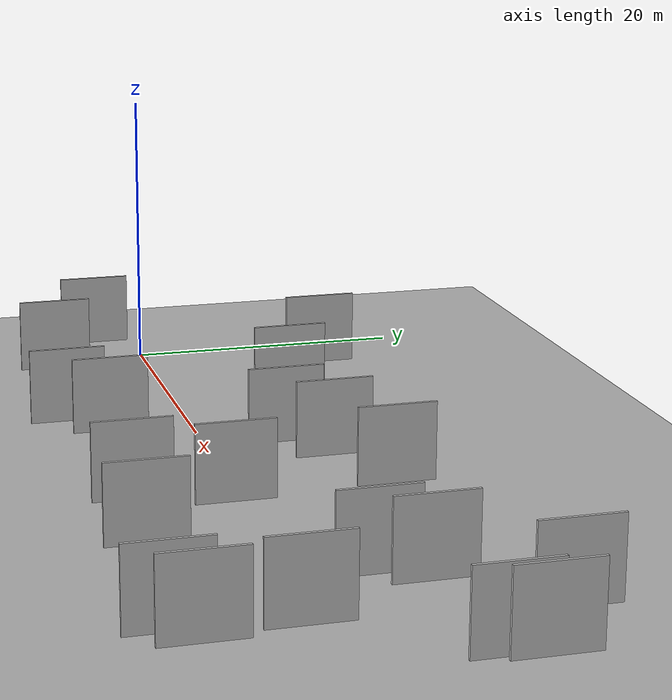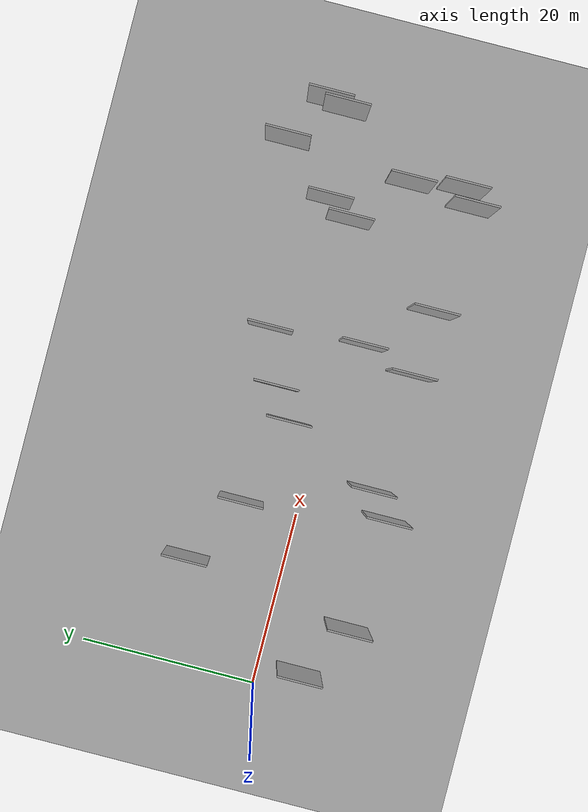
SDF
<?xml version="1.0" encoding="utf-8"?>

<sdf version="1.6">

   <world name="default">

      <gui fullscreen="0">

         <camera name="user_camera">

            <pose>-15 0 4.57585 0 0 0</pose>

            <view_controller>orbit</view_controller>

         </camera>

      </gui>

      <scene>

         <sky>

           <clouds>

             <speed>12</speed>

           </clouds>

         </sky>

         <ambient>0.4 0.4 0.4 1</ambient>

         <background>0.7 0.7 0.7 1</background>

         <shadows>1</shadows>

      </scene>

      <gravity>0 0 -9.8066</gravity>

      <magnetic_field>6e-06 2.3e-05 -4.2e-05</magnetic_field>

      <physics default="0" name="default_physics" type="ode">

         <ode>

            <solver>

               <type>quick</type>

               <iters>10</iters>

               <sor>1.0</sor>

               <use_dynamic_moi_rescaling>0</use_dynamic_moi_rescaling>

            </solver>

            <constraints>

               <cfm>0</cfm>

               <erp>0.2</erp>

               <contact_max_correcting_vel>100</contact_max_correcting_vel>

               <contact_surface_layer>0.001</contact_surface_layer>

            </constraints>

         </ode>

         <max_step_size>0.004</max_step_size>

         <real_time_factor>1</real_time_factor>

         <real_time_update_rate>250</real_time_update_rate>

      </physics>

      <light name="sun" type="directional">

         <cast_shadows>1</cast_shadows>

         <pose>0 0 10 0 0 0</pose>

         <diffuse>0.8 0.8 0.8 1</diffuse>

         <specular>0.2 0.2 0.2 1</specular>

         <attenuation>

            <range>1000</range>

            <constant>0.9</constant>

            <linear>0.01</linear>

            <quadratic>0.001</quadratic>

         </attenuation>

         <direction>-0.5 0.1 -0.9</direction>

      </light>

      <include>

         <name>ground_plane_1</name>

         <uri>model://HANNAS_ground_plane</uri>

         <pose>0 0 0  0 0 0</pose>

      </include>

      <include>

         <name>ground_plane_2</name>

         <uri>model://HANNAS_ground_plane</uri>

         <pose>100 0 0  0 0 0</pose>

      </include>

      <model name="HANNAS_wall_1">

         <static>1</static>

         <pose frame="">13.2451 10.8128 2.5 0.000000 0.000000 1.570796</pose>

         <link name="link">

            <pose frame="">0 0 2.50 0 0 0</pose>

            <collision name="collision">

               <geometry>

                  <box>

                     <size>5.00 0.2 5.00</size>

                  </box>

               </geometry>

               <max_contacts>10</max_contacts>

               <surface>

                  <contact>

                     <ode/>

                  </contact>

                  <bounce/>

                  <friction>

                     <torsional>

                        <ode/>

                     </torsional>

                     <ode/>

                  </friction>

               </surface>

            </collision>

            <visual name="visual">

               <cast_shadows>0</cast_shadows>

               <geometry>

                  <box>

                     <size>5.00 0.2 5.00</size>

                  </box>

               </geometry>

               <material>

                  <script>

                     <uri>model://HANNAS_wall/materials/scripts</uri>

                     <uri>model://HANNAS_wall/materials/textures</uri>

                     <name>vrc/HANNAS_wall</name>

                  </script>

               </material>

            </visual>

            <self_collide>0</self_collide>

            <enable_wind>0</enable_wind>

            <kinematic>0</kinematic>

         </link>

      </model>

      <model name="HANNAS_wall_2">

         <static>1</static>

         <pose frame="">39.5926 8.1838 2.5 0.000000 0.000000 1.570796</pose>

         <link name="link">

            <pose frame="">0 0 2.50 0 0 0</pose>

            <collision name="collision">

               <geometry>

                  <box>

                     <size>5.00 0.2 5.00</size>

                  </box>

               </geometry>

               <max_contacts>10</max_contacts>

               <surface>

                  <contact>

                     <ode/>

                  </contact>

                  <bounce/>

                  <friction>

                     <torsional>

                        <ode/>

                     </torsional>

                     <ode/>

                  </friction>

               </surface>

            </collision>

            <visual name="visual">

               <cast_shadows>0</cast_shadows>

               <geometry>

                  <box>

                     <size>5.00 0.2 5.00</size>

                  </box>

               </geometry>

               <material>

                  <script>

                     <uri>model://HANNAS_wall/materials/scripts</uri>

                     <uri>model://HANNAS_wall/materials/textures</uri>

                     <name>vrc/HANNAS_wall</name>

                  </script>

               </material>

            </visual>

            <self_collide>0</self_collide>

            <enable_wind>0</enable_wind>

            <kinematic>0</kinematic>

         </link>

      </model>

      <model name="HANNAS_wall_3">

         <static>1</static>

         <pose frame="">58.6448 -2.6094 2.5 0.000000 0.000000 1.570796</pose>

         <link name="link">

            <pose frame="">0 0 2.50 0 0 0</pose>

            <collision name="collision">

               <geometry>

                  <box>

                     <size>5.00 0.2 5.00</size>

                  </box>

               </geometry>

               <max_contacts>10</max_contacts>

               <surface>

                  <contact>

                     <ode/>

                  </contact>

                  <bounce/>

                  <friction>

                     <torsional>

                        <ode/>

                     </torsional>

                     <ode/>

                  </friction>

               </surface>

            </collision>

            <visual name="visual">

               <cast_shadows>0</cast_shadows>

               <geometry>

                  <box>

                     <size>5.00 0.2 5.00</size>

                  </box>

               </geometry>

               <material>

                  <script>

                     <uri>model://HANNAS_wall/materials/scripts</uri>

                     <uri>model://HANNAS_wall/materials/textures</uri>

                     <name>vrc/HANNAS_wall</name>

                  </script>

               </material>

            </visual>

            <self_collide>0</self_collide>

            <enable_wind>0</enable_wind>

            <kinematic>0</kinematic>

         </link>

      </model>

      <model name="HANNAS_wall_4">

         <static>1</static>

         <pose frame="">20.6248 6.5667 2.5 0.000000 0.000000 1.570796</pose>

         <link name="link">

            <pose frame="">0 0 2.50 0 0 0</pose>

            <collision name="collision">

               <geometry>

                  <box>

                     <size>5.00 0.2 5.00</size>

                  </box>

               </geometry>

               <max_contacts>10</max_contacts>

               <surface>

                  <contact>

                     <ode/>

                  </contact>

                  <bounce/>

                  <friction>

                     <torsional>

                        <ode/>

                     </torsional>

                     <ode/>

                  </friction>

               </surface>

            </collision>

            <visual name="visual">

               <cast_shadows>0</cast_shadows>

               <geometry>

                  <box>

                     <size>5.00 0.2 5.00</size>

                  </box>

               </geometry>

               <material>

                  <script>

                     <uri>model://HANNAS_wall/materials/scripts</uri>

                     <uri>model://HANNAS_wall/materials/textures</uri>

                     <name>vrc/HANNAS_wall</name>

                  </script>

               </material>

            </visual>

            <self_collide>0</self_collide>

            <enable_wind>0</enable_wind>

            <kinematic>0</kinematic>

         </link>

      </model>

      <model name="HANNAS_wall_5">

         <static>1</static>

         <pose frame="">53.0732 2.7881 2.5 0.000000 0.000000 1.570796</pose>

         <link name="link">

            <pose frame="">0 0 2.50 0 0 0</pose>

            <collision name="collision">

               <geometry>

                  <box>

                     <size>5.00 0.2 5.00</size>

                  </box>

               </geometry>

               <max_contacts>10</max_contacts>

               <surface>

                  <contact>

                     <ode/>

                  </contact>

                  <bounce/>

                  <friction>

                     <torsional>

                        <ode/>

                     </torsional>

                     <ode/>

                  </friction>

               </surface>

            </collision>

            <visual name="visual">

               <cast_shadows>0</cast_shadows>

               <geometry>

                  <box>

                     <size>5.00 0.2 5.00</size>

                  </box>

               </geometry>

               <material>

                  <script>

                     <uri>model://HANNAS_wall/materials/scripts</uri>

                     <uri>model://HANNAS_wall/materials/textures</uri>

                     <name>vrc/HANNAS_wall</name>

                  </script>

               </material>

            </visual>

            <self_collide>0</self_collide>

            <enable_wind>0</enable_wind>

            <kinematic>0</kinematic>

         </link>

      </model>

      <model name="HANNAS_wall_6">

         <static>1</static>

         <pose frame="">30.2389 3.7222 2.5 0.000000 0.000000 1.570796</pose>

         <link name="link">

            <pose frame="">0 0 2.50 0 0 0</pose>

            <collision name="collision">

               <geometry>

                  <box>

                     <size>5.00 0.2 5.00</size>

                  </box>

               </geometry>

               <max_contacts>10</max_contacts>

               <surface>

                  <contact>

                     <ode/>

                  </contact>

                  <bounce/>

                  <friction>

                     <torsional>

                        <ode/>

                     </torsional>

                     <ode/>

                  </friction>

               </surface>

            </collision>

            <visual name="visual">

               <cast_shadows>0</cast_shadows>

               <geometry>

                  <box>

                     <size>5.00 0.2 5.00</size>

                  </box>

               </geometry>

               <material>

                  <script>

                     <uri>model://HANNAS_wall/materials/scripts</uri>

                     <uri>model://HANNAS_wall/materials/textures</uri>

                     <name>vrc/HANNAS_wall</name>

                  </script>

               </material>

            </visual>

            <self_collide>0</self_collide>

            <enable_wind>0</enable_wind>

            <kinematic>0</kinematic>

         </link>

      </model>

      <model name="HANNAS_wall_7">

         <static>1</static>

         <pose frame="">33.6162 5.9820 2.5 0.000000 0.000000 1.570796</pose>

         <link name="link">

            <pose frame="">0 0 2.50 0 0 0</pose>

            <collision name="collision">

               <geometry>

                  <box>

                     <size>5.00 0.2 5.00</size>

                  </box>

               </geometry>

               <max_contacts>10</max_contacts>

               <surface>

                  <contact>

                     <ode/>

                  </contact>

                  <bounce/>

                  <friction>

                     <torsional>

                        <ode/>

                     </torsional>

                     <ode/>

                  </friction>

               </surface>

            </collision>

            <visual name="visual">

               <cast_shadows>0</cast_shadows>

               <geometry>

                  <box>

                     <size>5.00 0.2 5.00</size>

                  </box>

               </geometry>

               <material>

                  <script>

                     <uri>model://HANNAS_wall/materials/scripts</uri>

                     <uri>model://HANNAS_wall/materials/textures</uri>

                     <name>vrc/HANNAS_wall</name>

                  </script>

               </material>

            </visual>

            <self_collide>0</self_collide>

            <enable_wind>0</enable_wind>

            <kinematic>0</kinematic>

         </link>

      </model>

      <model name="HANNAS_wall_8">

         <static>1</static>

         <pose frame="">9.9289 -8.1505 2.5 0.000000 0.000000 1.570796</pose>

         <link name="link">

            <pose frame="">0 0 2.50 0 0 0</pose>

            <collision name="collision">

               <geometry>

                  <box>

                     <size>5.00 0.2 5.00</size>

                  </box>

               </geometry>

               <max_contacts>10</max_contacts>

               <surface>

                  <contact>

                     <ode/>

                  </contact>

                  <bounce/>

                  <friction>

                     <torsional>

                        <ode/>

                     </torsional>

                     <ode/>

                  </friction>

               </surface>

            </collision>

            <visual name="visual">

               <cast_shadows>0</cast_shadows>

               <geometry>

                  <box>

                     <size>5.00 0.2 5.00</size>

                  </box>

               </geometry>

               <material>

                  <script>

                     <uri>model://HANNAS_wall/materials/scripts</uri>

                     <uri>model://HANNAS_wall/materials/textures</uri>

                     <name>vrc/HANNAS_wall</name>

                  </script>

               </material>

            </visual>

            <self_collide>0</self_collide>

            <enable_wind>0</enable_wind>

            <kinematic>0</kinematic>

         </link>

      </model>

      <model name="HANNAS_wall_9">

         <static>1</static>

         <pose frame="">40.2540 -2.0365 2.5 0.000000 0.000000 1.570796</pose>

         <link name="link">

            <pose frame="">0 0 2.50 0 0 0</pose>

            <collision name="collision">

               <geometry>

                  <box>

                     <size>5.00 0.2 5.00</size>

                  </box>

               </geometry>

               <max_contacts>10</max_contacts>

               <surface>

                  <contact>

                     <ode/>

                  </contact>

                  <bounce/>

                  <friction>

                     <torsional>

                        <ode/>

                     </torsional>

                     <ode/>

                  </friction>

               </surface>

            </collision>

            <visual name="visual">

               <cast_shadows>0</cast_shadows>

               <geometry>

                  <box>

                     <size>5.00 0.2 5.00</size>

                  </box>

               </geometry>

               <material>

                  <script>

                     <uri>model://HANNAS_wall/materials/scripts</uri>

                     <uri>model://HANNAS_wall/materials/textures</uri>

                     <name>vrc/HANNAS_wall</name>

                  </script>

               </material>

            </visual>

            <self_collide>0</self_collide>

            <enable_wind>0</enable_wind>

            <kinematic>0</kinematic>

         </link>

      </model>

      <model name="HANNAS_wall_10">

         <static>1</static>

         <pose frame="">25.2299 -6.8464 2.5 0.000000 0.000000 1.570796</pose>

         <link name="link">

            <pose frame="">0 0 2.50 0 0 0</pose>

            <collision name="collision">

               <geometry>

                  <box>

                     <size>5.00 0.2 5.00</size>

                  </box>

               </geometry>

               <max_contacts>10</max_contacts>

               <surface>

                  <contact>

                     <ode/>

                  </contact>

                  <bounce/>

                  <friction>

                     <torsional>

                        <ode/>

                     </torsional>

                     <ode/>

                  </friction>

               </surface>

            </collision>

            <visual name="visual">

               <cast_shadows>0</cast_shadows>

               <geometry>

                  <box>

                     <size>5.00 0.2 5.00</size>

                  </box>

               </geometry>

               <material>

                  <script>

                     <uri>model://HANNAS_wall/materials/scripts</uri>

                     <uri>model://HANNAS_wall/materials/textures</uri>

                     <name>vrc/HANNAS_wall</name>

                  </script>

               </material>

            </visual>

            <self_collide>0</self_collide>

            <enable_wind>0</enable_wind>

            <kinematic>0</kinematic>

         </link>

      </model>

      <model name="HANNAS_wall_11">

         <static>1</static>

         <pose frame="">54.7142 5.4591 2.5 0.000000 0.000000 1.570796</pose>

         <link name="link">

            <pose frame="">0 0 2.50 0 0 0</pose>

            <collision name="collision">

               <geometry>

                  <box>

                     <size>5.00 0.2 5.00</size>

                  </box>

               </geometry>

               <max_contacts>10</max_contacts>

               <surface>

                  <contact>

                     <ode/>

                  </contact>

                  <bounce/>

                  <friction>

                     <torsional>

                        <ode/>

                     </torsional>

                     <ode/>

                  </friction>

               </surface>

            </collision>

            <visual name="visual">

               <cast_shadows>0</cast_shadows>

               <geometry>

                  <box>

                     <size>5.00 0.2 5.00</size>

                  </box>

               </geometry>

               <material>

                  <script>

                     <uri>model://HANNAS_wall/materials/scripts</uri>

                     <uri>model://HANNAS_wall/materials/textures</uri>

                     <name>vrc/HANNAS_wall</name>

                  </script>

               </material>

            </visual>

            <self_collide>0</self_collide>

            <enable_wind>0</enable_wind>

            <kinematic>0</kinematic>

         </link>

      </model>

      <model name="HANNAS_wall_12">

         <static>1</static>

         <pose frame="">59.3959 -8.3452 2.5 0.000000 0.000000 1.570796</pose>

         <link name="link">

            <pose frame="">0 0 2.50 0 0 0</pose>

            <collision name="collision">

               <geometry>

                  <box>

                     <size>5.00 0.2 5.00</size>

                  </box>

               </geometry>

               <max_contacts>10</max_contacts>

               <surface>

                  <contact>

                     <ode/>

                  </contact>

                  <bounce/>

                  <friction>

                     <torsional>

                        <ode/>

                     </torsional>

                     <ode/>

                  </friction>

               </surface>

            </collision>

            <visual name="visual">

               <cast_shadows>0</cast_shadows>

               <geometry>

                  <box>

                     <size>5.00 0.2 5.00</size>

                  </box>

               </geometry>

               <material>

                  <script>

                     <uri>model://HANNAS_wall/materials/scripts</uri>

                     <uri>model://HANNAS_wall/materials/textures</uri>

                     <name>vrc/HANNAS_wall</name>

                  </script>

               </material>

            </visual>

            <self_collide>0</self_collide>

            <enable_wind>0</enable_wind>

            <kinematic>0</kinematic>

         </link>

      </model>

      <model name="HANNAS_wall_13">

         <static>1</static>

         <pose frame="">57.6856 -9.7533 2.5 0.000000 0.000000 1.570796</pose>

         <link name="link">

            <pose frame="">0 0 2.50 0 0 0</pose>

            <collision name="collision">

               <geometry>

                  <box>

                     <size>5.00 0.2 5.00</size>

                  </box>

               </geometry>

               <max_contacts>10</max_contacts>

               <surface>

                  <contact>

                     <ode/>

                  </contact>

                  <bounce/>

                  <friction>

                     <torsional>

                        <ode/>

                     </torsional>

                     <ode/>

                  </friction>

               </surface>

            </collision>

            <visual name="visual">

               <cast_shadows>0</cast_shadows>

               <geometry>

                  <box>

                     <size>5.00 0.2 5.00</size>

                  </box>

               </geometry>

               <material>

                  <script>

                     <uri>model://HANNAS_wall/materials/scripts</uri>

                     <uri>model://HANNAS_wall/materials/textures</uri>

                     <name>vrc/HANNAS_wall</name>

                  </script>

               </material>

            </visual>

            <self_collide>0</self_collide>

            <enable_wind>0</enable_wind>

            <kinematic>0</kinematic>

         </link>

      </model>

      <model name="HANNAS_wall_14">

         <static>1</static>

         <pose frame="">38.3532 -7.8992 2.5 0.000000 0.000000 1.570796</pose>

         <link name="link">

            <pose frame="">0 0 2.50 0 0 0</pose>

            <collision name="collision">

               <geometry>

                  <box>

                     <size>5.00 0.2 5.00</size>

                  </box>

               </geometry>

               <max_contacts>10</max_contacts>

               <surface>

                  <contact>

                     <ode/>

                  </contact>

                  <bounce/>

                  <friction>

                     <torsional>

                        <ode/>

                     </torsional>

                     <ode/>

                  </friction>

               </surface>

            </collision>

            <visual name="visual">

               <cast_shadows>0</cast_shadows>

               <geometry>

                  <box>

                     <size>5.00 0.2 5.00</size>

                  </box>

               </geometry>

               <material>

                  <script>

                     <uri>model://HANNAS_wall/materials/scripts</uri>

                     <uri>model://HANNAS_wall/materials/textures</uri>

                     <name>vrc/HANNAS_wall</name>

                  </script>

               </material>

            </visual>

            <self_collide>0</self_collide>

            <enable_wind>0</enable_wind>

            <kinematic>0</kinematic>

         </link>

      </model>

      <model name="HANNAS_wall_15">

         <static>1</static>

         <pose frame="">45.5898 -8.4829 2.5 0.000000 0.000000 1.570796</pose>

         <link name="link">

            <pose frame="">0 0 2.50 0 0 0</pose>

            <collision name="collision">

               <geometry>

                  <box>

                     <size>5.00 0.2 5.00</size>

                  </box>

               </geometry>

               <max_contacts>10</max_contacts>

               <surface>

                  <contact>

                     <ode/>

                  </contact>

                  <bounce/>

                  <friction>

                     <torsional>

                        <ode/>

                     </torsional>

                     <ode/>

                  </friction>

               </surface>

            </collision>

            <visual name="visual">

               <cast_shadows>0</cast_shadows>

               <geometry>

                  <box>

                     <size>5.00 0.2 5.00</size>

                  </box>

               </geometry>

               <material>

                  <script>

                     <uri>model://HANNAS_wall/materials/scripts</uri>

                     <uri>model://HANNAS_wall/materials/textures</uri>

                     <name>vrc/HANNAS_wall</name>

                  </script>

               </material>

            </visual>

            <self_collide>0</self_collide>

            <enable_wind>0</enable_wind>

            <kinematic>0</kinematic>

         </link>

      </model>

      <model name="HANNAS_wall_16">

         <static>1</static>

         <pose frame="">64.7360 6.1749 2.5 0.000000 0.000000 1.570796</pose>

         <link name="link">

            <pose frame="">0 0 2.50 0 0 0</pose>

            <collision name="collision">

               <geometry>

                  <box>

                     <size>5.00 0.2 5.00</size>

                  </box>

               </geometry>

               <max_contacts>10</max_contacts>

               <surface>

                  <contact>

                     <ode/>

                  </contact>

                  <bounce/>

                  <friction>

                     <torsional>

                        <ode/>

                     </torsional>

                     <ode/>

                  </friction>

               </surface>

            </collision>

            <visual name="visual">

               <cast_shadows>0</cast_shadows>

               <geometry>

                  <box>

                     <size>5.00 0.2 5.00</size>

                  </box>

               </geometry>

               <material>

                  <script>

                     <uri>model://HANNAS_wall/materials/scripts</uri>

                     <uri>model://HANNAS_wall/materials/textures</uri>

                     <name>vrc/HANNAS_wall</name>

                  </script>

               </material>

            </visual>

            <self_collide>0</self_collide>

            <enable_wind>0</enable_wind>

            <kinematic>0</kinematic>

         </link>

      </model>

      <model name="HANNAS_wall_17">

         <static>1</static>

         <pose frame="">65.2441 8.0949 2.5 0.000000 0.000000 1.570796</pose>

         <link name="link">

            <pose frame="">0 0 2.50 0 0 0</pose>

            <collision name="collision">

               <geometry>

                  <box>

                     <size>5.00 0.2 5.00</size>

                  </box>

               </geometry>

               <max_contacts>10</max_contacts>

               <surface>

                  <contact>

                     <ode/>

                  </contact>

                  <bounce/>

                  <friction>

                     <torsional>

                        <ode/>

                     </torsional>

                     <ode/>

                  </friction>

               </surface>

            </collision>

            <visual name="visual">

               <cast_shadows>0</cast_shadows>

               <geometry>

                  <box>

                     <size>5.00 0.2 5.00</size>

                  </box>

               </geometry>

               <material>

                  <script>

                     <uri>model://HANNAS_wall/materials/scripts</uri>

                     <uri>model://HANNAS_wall/materials/textures</uri>

                     <name>vrc/HANNAS_wall</name>

                  </script>

               </material>

            </visual>

            <self_collide>0</self_collide>

            <enable_wind>0</enable_wind>

            <kinematic>0</kinematic>

         </link>

      </model>

      <model name="HANNAS_wall_18">

         <static>1</static>

         <pose frame="">3.8742 -4.2425 2.5 0.000000 0.000000 1.570796</pose>

         <link name="link">

            <pose frame="">0 0 2.50 0 0 0</pose>

            <collision name="collision">

               <geometry>

                  <box>

                     <size>5.00 0.2 5.00</size>

                  </box>

               </geometry>

               <max_contacts>10</max_contacts>

               <surface>

                  <contact>

                     <ode/>

                  </contact>

                  <bounce/>

                  <friction>

                     <torsional>

                        <ode/>

                     </torsional>

                     <ode/>

                  </friction>

               </surface>

            </collision>

            <visual name="visual">

               <cast_shadows>0</cast_shadows>

               <geometry>

                  <box>

                     <size>5.00 0.2 5.00</size>

                  </box>

               </geometry>

               <material>

                  <script>

                     <uri>model://HANNAS_wall/materials/scripts</uri>

                     <uri>model://HANNAS_wall/materials/textures</uri>

                     <name>vrc/HANNAS_wall</name>

                  </script>

               </material>

            </visual>

            <self_collide>0</self_collide>

            <enable_wind>0</enable_wind>

            <kinematic>0</kinematic>

         </link>

      </model>

      <model name="HANNAS_wall_19">

         <static>1</static>

         <pose frame="">22.4829 -9.2370 2.5 0.000000 0.000000 1.570796</pose>

         <link name="link">

            <pose frame="">0 0 2.50 0 0 0</pose>

            <collision name="collision">

               <geometry>

                  <box>

                     <size>5.00 0.2 5.00</size>

                  </box>

               </geometry>

               <max_contacts>10</max_contacts>

               <surface>

                  <contact>

                     <ode/>

                  </contact>

                  <bounce/>

                  <friction>

                     <torsional>

                        <ode/>

                     </torsional>

                     <ode/>

                  </friction>

               </surface>

            </collision>

            <visual name="visual">

               <cast_shadows>0</cast_shadows>

               <geometry>

                  <box>

                     <size>5.00 0.2 5.00</size>

                  </box>

               </geometry>

               <material>

                  <script>

                     <uri>model://HANNAS_wall/materials/scripts</uri>

                     <uri>model://HANNAS_wall/materials/textures</uri>

                     <name>vrc/HANNAS_wall</name>

                  </script>

               </material>

            </visual>

            <self_collide>0</self_collide>

            <enable_wind>0</enable_wind>

            <kinematic>0</kinematic>

         </link>

      </model>

      <model name="HANNAS_wall_20">

         <static>1</static>

         <pose frame="">59.9686 11.4936 2.5 0.000000 0.000000 1.570796</pose>

         <link name="link">

            <pose frame="">0 0 2.50 0 0 0</pose>

            <collision name="collision">

               <geometry>

                  <box>

                     <size>5.00 0.2 5.00</size>

                  </box>

               </geometry>

               <max_contacts>10</max_contacts>

               <surface>

                  <contact>

                     <ode/>

                  </contact>

                  <bounce/>

                  <friction>

                     <torsional>

                        <ode/>

                     </torsional>

                     <ode/>

                  </friction>

               </surface>

            </collision>

            <visual name="visual">

               <cast_shadows>0</cast_shadows>

               <geometry>

                  <box>

                     <size>5.00 0.2 5.00</size>

                  </box>

               </geometry>

               <material>

                  <script>

                     <uri>model://HANNAS_wall/materials/scripts</uri>

                     <uri>model://HANNAS_wall/materials/textures</uri>

                     <name>vrc/HANNAS_wall</name>

                  </script>

               </material>

            </visual>

            <self_collide>0</self_collide>

            <enable_wind>0</enable_wind>

            <kinematic>0</kinematic>

         </link>

      </model>

   </world>

</sdf>

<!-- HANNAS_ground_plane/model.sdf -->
<sdf version="1.4">
<model name="HANNAS_ground_plane">
  <static>true</static>
    <link name="link">
      <collision name="collision">
        <geometry>
          <plane>
            <normal>0 0 1</normal>
            <size>1000 1000</size>
          </plane>
        </geometry>
        <surface>
          <friction>
            <ode>
              <mu>100</mu>
              <mu2>50</mu2>
            </ode>
          </friction>
        </surface>
      </collision>
      <visual name="visual">
        <cast_shadows>false</cast_shadows>
        <geometry>
          <plane>
            <normal>0 0 1</normal>
            <size>1000 1000</size>
          </plane>
        </geometry>
        <material>
          <script>
            <uri>model://HANNAS_ground_plane/materials/scripts/HANNAS_ground_plane.material</uri>
	    <uri>model://HANNAS_ground_plane/materials/textures</uri>
            <name>HANNASGroundPlane/Image</name>
          </script>
        </material>
      </visual>
    </link>
  </model>
</sdf>
